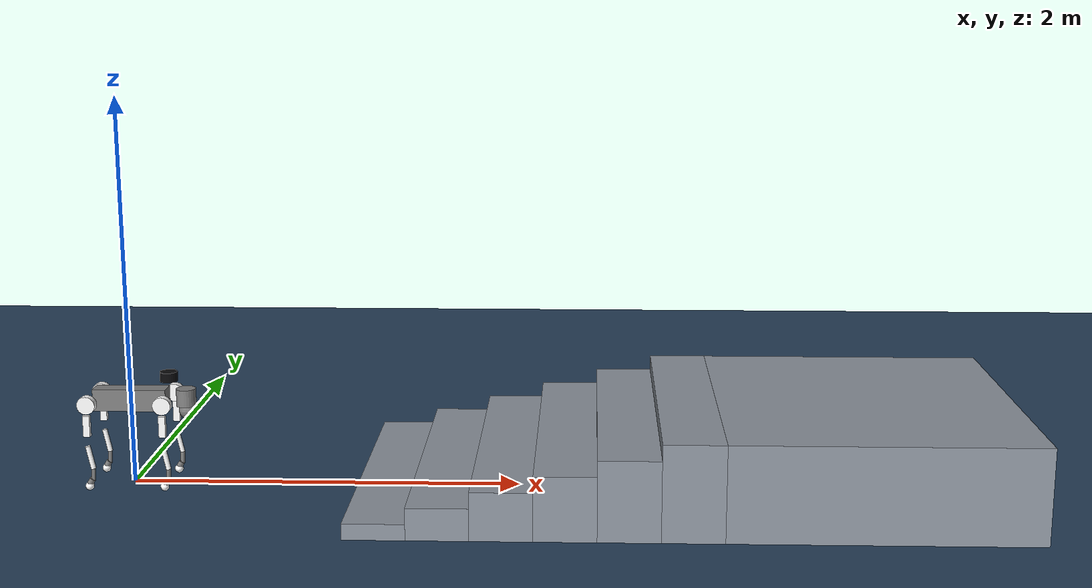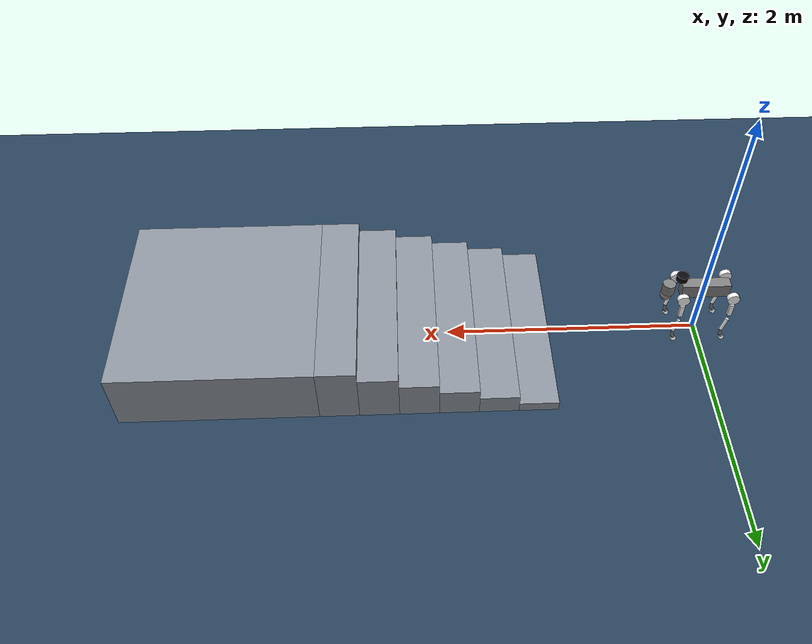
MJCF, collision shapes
<mujoco model="go2 six-step stairs">
  <include file="go2.xml"/>

  <statistic center="2.2 0 0.45" extent="2.8"/>

  <visual>
    <headlight diffuse="0.6 0.6 0.6" ambient="0.3 0.3 0.3" specular="0.2 0.2 0.2"/>
    <rgba haze="0.15 0.25 0.35 1"/>
    <global azimuth="-135" elevation="-20"/>
  </visual>

  <asset>
    <texture type="skybox" builtin="gradient" rgb1="0.3 0.5 0.7" rgb2="0 0 0" width="512" height="3072"/>
    <texture type="2d" name="groundplane" builtin="checker" mark="edge"
             rgb1="0.2 0.3 0.4" rgb2="0.1 0.2 0.3" markrgb="0.8 0.8 0.8"
             width="300" height="300"/>
    <material name="groundplane" texture="groundplane" texuniform="true" texrepeat="5 5" reflectance="0.1"/>
    <material name="stair_mat" rgba="0.55 0.58 0.62 1" roughness="0.8"/>
  </asset>

  <worldbody>
    <light pos="2 0 4" dir="0 0 -1" directional="true"/>
    <geom name="floor" size="0 0 0.05" type="plane" group="1" material="groundplane" friction="1.0 0.01 0.001"/>

    <!-- Six steps: 30 cm tread, 8 cm rise, 1.6 m wide. -->
    <geom name="step_1" type="box" group="1" pos="1.35 0 0.04" size="0.15 0.80 0.04" material="stair_mat" friction="1.0 0.01 0.001"/>
    <geom name="step_2" type="box" group="1" pos="1.65 0 0.08" size="0.15 0.80 0.08" material="stair_mat" friction="1.0 0.01 0.001"/>
    <geom name="step_3" type="box" group="1" pos="1.95 0 0.12" size="0.15 0.80 0.12" material="stair_mat" friction="1.0 0.01 0.001"/>
    <geom name="step_4" type="box" group="1" pos="2.25 0 0.16" size="0.15 0.80 0.16" material="stair_mat" friction="1.0 0.01 0.001"/>
    <geom name="step_5" type="box" group="1" pos="2.55 0 0.20" size="0.15 0.80 0.20" material="stair_mat" friction="1.0 0.01 0.001"/>
    <geom name="step_6" type="box" group="1" pos="2.85 0 0.24" size="0.15 0.80 0.24" material="stair_mat" friction="1.0 0.01 0.001"/>
    <geom name="top_platform" type="box" group="1" pos="3.75 0 0.24" size="0.75 0.80 0.24" material="stair_mat" friction="1.0 0.01 0.001"/>
  </worldbody>
</mujoco>

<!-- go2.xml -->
<mujoco model="go2_description">

  <compiler angle="radian" meshdir="assets"/>

  <statistic meansize="0.144785" extent="1.23314" center="0.025392 2.0634e-05 -0.245975"/>
  <default>
    <joint damping="0.001" armature="0.01" frictionloss="0.1"/>
    <default class="visual">
        <geom type="mesh" contype="0" conaffinity="0" group="2"/>
    </default>
  </default>

  <asset>
    <material name="metal" rgba=".9 .95 .95 1" />
    <material name="black" rgba="0 0 0 1" />
    <material name="white" rgba="1 1 1 1" />
    <material name="gray" rgba="0.671705 0.692426 0.774270 1" />

    <mesh file="base_0.obj" />
    <mesh file="base_1.obj" />
    <mesh file="base_2.obj" />
    <mesh file="base_3.obj" />
    <mesh file="base_4.obj" />
    <mesh file="hip_0.obj" />
    <mesh file="hip_1.obj" />
    <mesh file="thigh_0.obj" />
    <mesh file="thigh_1.obj" />
    <mesh file="thigh_mirror_0.obj" />
    <mesh file="thigh_mirror_1.obj" />
    <mesh file="calf_0.obj" />
    <mesh file="calf_1.obj" />
    <mesh file="calf_mirror_0.obj" />
    <mesh file="calf_mirror_1.obj" />
    <mesh file="foot.obj" />
  </asset>

  <worldbody>

    <body name="base" pos="0 0 0.445">
      <inertial pos="0.021112 0 -0.005366"
                mass="6.921"
                diaginertia="0.02448 0.098077 0.107" />
      <freejoint name="root"/>
      <geom mesh="base_0" material="black" class="visual" />
      <geom mesh="base_1" material="black" class="visual" />
      <geom mesh="base_2" material="black" class="visual" />
      <geom mesh="base_3" material="white" class="visual" />
      <geom mesh="base_4" material="gray" class="visual" />

      <geom name="base_box"      type="box"      size="0.1881 0.04675 0.057"/>
      <geom name="base_cyl1"     type="cylinder" size="0.05 0.045"   pos="0.285 0 0.01"/>
      <geom name="base_sphere1"  type="sphere"   size="0.047"        pos="0.293 0 -0.06"/>
      <site name="lidar_origin" type="cylinder" pos="0.20 0 0.12"
            size="0.045 0.025" rgba="0.04 0.04 0.05 1"/>
      <!-- Forward-facing RGB-D camera used by the ROS 2 / RTAB-Map bridge.
           MuJoCo cameras look along local -Z; these axes make +X forward and
           +Z upward in the Go2 base frame. -->
      <camera name="front_rgbd" pos="0.30 0 0.04"
              xyaxes="0 -1 0 0 0 1" fovy="70"/>

      <body name="FL_hip" pos="0.1934 0.0465 0">
        <inertial pos="-0.0054 0.00194 -0.000105" quat="0.497014 0.499245 0.505462 0.498237" mass="0.678" diaginertia="0.00088403 0.000596003 0.000479967"/>
        <joint name="FL_hip_joint" pos="0 0 0" axis="1 0 0" range="-1.0472 1.0472" actuatorfrcrange="-23.7 23.7"/>
        <geom mesh="hip_0" material="metal" class="visual" />
        <geom mesh="hip_1" material="gray" class="visual" />
        <geom size="0.046 0.02" pos="0 0.08 0" quat="0.707107 0.707107 0 0" type="cylinder" rgba="1 1 1 1"/>

        <body name="FL_thigh" pos="0 0.0955 0">
        <inertial pos="-0.00374 -0.0223 -0.0327" quat="0.829533 0.0847635 -0.0200632 0.551623" mass="1.152" diaginertia="0.00594973 0.00584149 0.000878787"/>
        <joint name="FL_thigh_joint" pos="0 0 0" axis="0 1 0" range="-1.5708 3.4907" actuatorfrcrange="-23.7 23.7"/>
        <geom mesh="thigh_0" material="metal" class="visual" />
        <geom mesh="thigh_1" material="gray" class="visual" />
        <geom size="0.055 0.01225 0.017" pos="0 0 -0.1065" quat="0.707107 0 0.707107 0" type="box" rgba="1 1 1 1"/>
        <body name="FL_calf" pos="0 0 -0.213">
        <inertial pos="0.00629595 -0.000622121 -0.141417" quat="0.710672 0.00154099 -0.00450087 0.703508" mass="0.241352" diaginertia="0.0014901 0.00146356 5.31397e-05"/>
        <joint name="FL_calf_joint" pos="0 0 0" axis="0 1 0" range="-2.7227 -0.83776" actuatorfrcrange="-35.55 35.55"/>
        <geom mesh="calf_0" material="gray" class="visual" />
        <geom mesh="calf_1" material="black" class="visual" />
        <geom size="0.012 0.06" pos="0.008 0 -0.06" quat="0.994493 0 -0.104807 0" type="cylinder" rgba="1 1 1 1"/>
        <geom size="0.011 0.0325" pos="0.02 0 -0.148" quat="0.999688 0 0.0249974 0" type="cylinder"/>
        <geom size="0.0155 0.015" pos="0.00801333 0 -0.18745" quat="0.965093 0 0.261909 0" type="cylinder"/>
        <geom pos="0 0 -0.213" mesh="foot" class="visual" material="black" />
        <geom size="0.022" pos="-0.002 0 -0.213" rgba="1 1 1 1"/>
        </body>
        </body>
      </body>
      <body name="FR_hip" pos="0.1934 -0.0465 0">
        <inertial pos="-0.0054 -0.00194 -0.000105" quat="0.498237 0.505462 0.499245 0.497014" mass="0.678" diaginertia="0.00088403 0.000596003 0.000479967"/>
        <joint name="FR_hip_joint" pos="0 0 0" axis="1 0 0" range="-1.0472 1.0472" actuatorfrcrange="-23.7 23.7"/>
        <geom mesh="hip_0" material="metal" class="visual" quat="4.63268e-05 1 0 0" />
        <geom mesh="hip_1" material="gray" class="visual" quat="4.63268e-05 1 0 0" />
        <geom size="0.046 0.02" pos="0 -0.08 0" quat="0.707107 0.707107 0 0" type="cylinder" rgba="1 1 1 1"/>
        <body name="FR_thigh" pos="0 -0.0955 0">
        <inertial pos="-0.00374 0.0223 -0.0327" quat="0.551623 -0.0200632 0.0847635 0.829533" mass="1.152" diaginertia="0.00594973 0.00584149 0.000878787"/>
        <joint name="FR_thigh_joint" pos="0 0 0" axis="0 1 0" range="-1.5708 3.4907" actuatorfrcrange="-23.7 23.7"/>
        <geom mesh="thigh_mirror_0" material="metal" class="visual" />
        <geom mesh="thigh_mirror_1" material="gray" class="visual" />
        <geom size="0.055 0.01225 0.017" pos="0 0 -0.1065" quat="0.707107 0 0.707107 0" type="box" rgba="1 1 1 1"/>
        <body name="FR_calf" pos="0 0 -0.213">
        <inertial pos="0.00629595 0.000622121 -0.141417" quat="0.703508 -0.00450087 0.00154099 0.710672" mass="0.241352" diaginertia="0.0014901 0.00146356 5.31397e-05"/>
        <joint name="FR_calf_joint" pos="0 0 0" axis="0 1 0" range="-2.7227 -0.83776" actuatorfrcrange="-35.55 35.55"/>
        <geom mesh="calf_mirror_0" material="gray" class="visual" />
        <geom mesh="calf_mirror_1" material="black" class="visual" />
        <geom size="0.013 0.06" pos="0.01 0 -0.06" quat="0.995004 0 -0.0998334 0" type="cylinder" rgba="1 1 1 1"/>
        <geom size="0.011 0.0325" pos="0.02 0 -0.148" quat="0.999688 0 0.0249974 0" type="cylinder"/>
        <geom size="0.0155 0.015" pos="0.00801333 0 -0.18745" quat="0.965093 0 0.261909 0" type="cylinder"/>
        <geom pos="0 0 -0.213" mesh="foot" class="visual" material="black" />
        <geom size="0.022" pos="-0.002 0 -0.213" rgba="1 1 1 1"/>
        </body>
        </body>
      </body>
      <body name="RL_hip" pos="-0.1934 0.0465 0">
        <inertial pos="0.0054 0.00194 -0.000105" quat="0.505462 0.498237 0.497014 0.499245" mass="0.678" diaginertia="0.00088403 0.000596003 0.000479967"/>
        <joint name="RL_hip_joint" pos="0 0 0" axis="1 0 0" range="-1.0472 1.0472" actuatorfrcrange="-23.7 23.7"/>
        <geom mesh="hip_0" material="metal" class="visual" quat="4.63268e-05 0 1 0" />
        <geom mesh="hip_1" material="gray" class="visual" quat="4.63268e-05 0 1 0" />
        <geom size="0.046 0.02" pos="0 0.08 0" quat="0.707107 0.707107 0 0" type="cylinder" rgba="1 1 1 1"/>
        <body name="RL_thigh" pos="0 0.0955 0">
        <inertial pos="-0.00374 -0.0223 -0.0327" quat="0.829533 0.0847635 -0.0200632 0.551623" mass="1.152" diaginertia="0.00594973 0.00584149 0.000878787"/>
        <joint name="RL_thigh_joint" pos="0 0 0" axis="0 1 0" range="-0.5236 4.5379" actuatorfrcrange="-23.7 23.7"/>
        <geom mesh="thigh_0" material="metal" class="visual" />
        <geom mesh="thigh_1" material="gray" class="visual" />
        <geom size="0.055 0.01225 0.017" pos="0 0 -0.1065" quat="0.707107 0 0.707107 0" type="box" rgba="1 1 1 1"/>
        <body name="RL_calf" pos="0 0 -0.213">
        <inertial pos="0.00629595 -0.000622121 -0.141417" quat="0.710672 0.00154099 -0.00450087 0.703508" mass="0.241352" diaginertia="0.0014901 0.00146356 5.31397e-05"/>
        <joint name="RL_calf_joint" pos="0 0 0" axis="0 1 0" range="-2.7227 -0.83776" actuatorfrcrange="-35.55 35.55"/>
        <geom mesh="calf_0" material="gray" class="visual" />
        <geom mesh="calf_1" material="black" class="visual" />
        <geom size="0.013 0.06" pos="0.01 0 -0.06" quat="0.995004 0 -0.0998334 0" type="cylinder" rgba="1 1 1 1"/>
        <geom size="0.011 0.0325" pos="0.02 0 -0.148" quat="0.999688 0 0.0249974 0" type="cylinder"/>
        <geom size="0.0155 0.015" pos="0.00801333 0 -0.18745" quat="0.965093 0 0.261909 0" type="cylinder"/>
        <geom pos="0 0 -0.213" mesh="foot" class="visual" material="black" />
        <geom size="0.022" pos="-0.002 0 -0.213" rgba="1 1 1 1"/>
        </body>
        </body>
      </body>

      <body name="RR_hip" pos="-0.1934 -0.0465 0">
        <inertial pos="0.0054 -0.00194 -0.000105" quat="0.499245 0.497014 0.498237 0.505462" mass="0.678" diaginertia="0.00088403 0.000596003 0.000479967"/>
        <joint name="RR_hip_joint" pos="0 0 0" axis="1 0 0" range="-1.0472 1.0472" actuatorfrcrange="-23.7 23.7"/>
        <geom mesh="hip_0" material="metal" class="visual"
          quat="2.14617e-09 4.63268e-05 4.63268e-05 -1" />
        <geom mesh="hip_1" material="gray" class="visual"
          quat="2.14617e-09 4.63268e-05 4.63268e-05 -1" />
        <geom size="0.046 0.02" pos="0 -0.08 0" quat="0.707107 0.707107 0 0" type="cylinder" rgba="1 1 1 1"/>
        <body name="RR_thigh" pos="0 -0.0955 0">
        <inertial pos="-0.00374 0.0223 -0.0327" quat="0.551623 -0.0200632 0.0847635 0.829533" mass="1.152" diaginertia="0.00594973 0.00584149 0.000878787"/>
        <joint name="RR_thigh_joint" pos="0 0 0" axis="0 1 0" range="-0.5236 4.5379" actuatorfrcrange="-23.7 23.7"/>
        <geom mesh="thigh_mirror_0" material="metal" class="visual" />
        <geom mesh="thigh_mirror_1" material="gray" class="visual" />
        <geom size="0.055 0.01225 0.017" pos="0 0 -0.1065" quat="0.707107 0 0.707107 0" type="box" rgba="1 1 1 1"/>
        <body name="RR_calf" pos="0 0 -0.213">
        <inertial pos="0.00629595 0.000622121 -0.141417" quat="0.703508 -0.00450087 0.00154099 0.710672" mass="0.241352" diaginertia="0.0014901 0.00146356 5.31397e-05"/>
        <joint name="RR_calf_joint" pos="0 0 0" axis="0 1 0" range="-2.7227 -0.83776" actuatorfrcrange="-35.55 35.55"/>
        <geom mesh="calf_mirror_0" material="gray" class="visual" />
        <geom mesh="calf_mirror_1" material="black" class="visual" />
        <geom size="0.013 0.06" pos="0.01 0 -0.06" quat="0.995004 0 -0.0998334 0" type="cylinder" rgba="1 1 1 1"/>
        <geom size="0.011 0.0325" pos="0.02 0 -0.148" quat="0.999688 0 0.0249974 0" type="cylinder"/>
        <geom size="0.0155 0.015" pos="0.00801333 0 -0.18745" quat="0.965093 0 0.261909 0" type="cylinder"/>
        <geom pos="0 0 -0.213" mesh="foot" class="visual" material="black" />
        <geom size="0.022" pos="-0.002 0 -0.213" rgba="1 1 1 1"/>
        </body>
        </body>
      </body>

    </body>
  </worldbody>

  <actuator>
    <motor name="FL_hip"   joint="FL_hip_joint"/>
    <motor name="FL_thigh" joint="FL_thigh_joint"/>
    <motor name="FL_calf"  joint="FL_calf_joint"/>
    <motor name="FR_hip"   joint="FR_hip_joint"/>
    <motor name="FR_thigh" joint="FR_thigh_joint"/>
    <motor name="FR_calf"  joint="FR_calf_joint"/>
    <motor name="RL_hip"   joint="RL_hip_joint"/>
    <motor name="RL_thigh" joint="RL_thigh_joint"/>
    <motor name="RL_calf"  joint="RL_calf_joint"/>
    <motor name="RR_hip"   joint="RR_hip_joint"/>
    <motor name="RR_thigh" joint="RR_thigh_joint"/>
    <motor name="RR_calf"  joint="RR_calf_joint"/>
  </actuator>

</mujoco>
